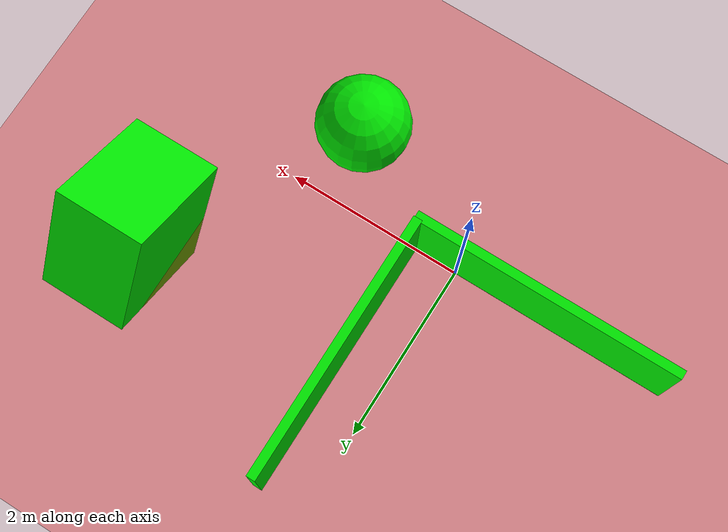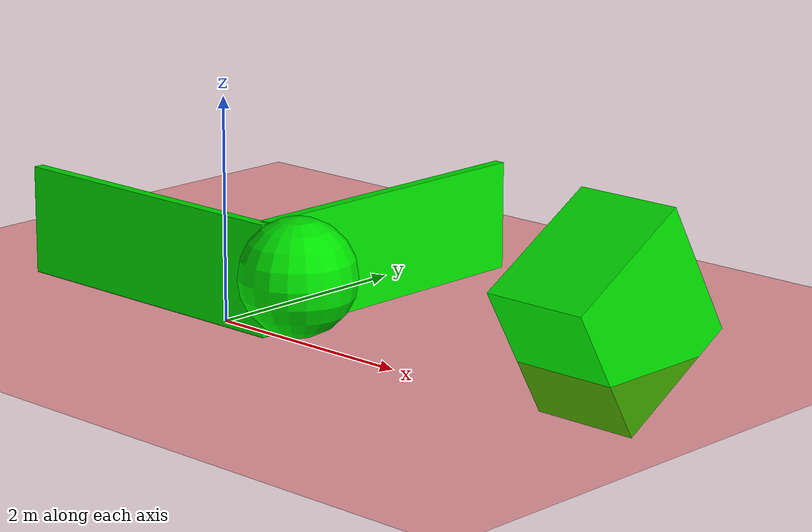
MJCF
<mujoco>
  <worldbody>
    <light diffuse=".5 .5 .5" pos="0 0 3" dir="0 0 -1" />
    <geom type="plane" size="5 5 1.110223E-16" rgba=".9 0 0 1" />
    <body pos="0.53 1.471 0.5">
      <geom type="box" size="0.05 1.5 0.5" euler="0 0 0" rgba="0 .9 0 1" />
    </body>
    <body pos="-0.934 -0.053 0.488">
      <geom type="box" size="1.5 0.05 0.5" euler="0 0 0" rgba="0 .9 0 1" />
    </body>
    <body pos="3.072566 1.444155 0.4191191">
      <geom type="box" size="0.5 0.6830127 0.6830127" euler="30 0 0" rgba="0 .9 0 1" />
    </body>
    <body pos="1.540213 -0.6351334 0.8347964">
      <geom type="sphere" size="0.5 0.5 0.5" euler="0 0 0" rgba="0 .9 0 1" />
    </body>
  </worldbody>
</mujoco>
